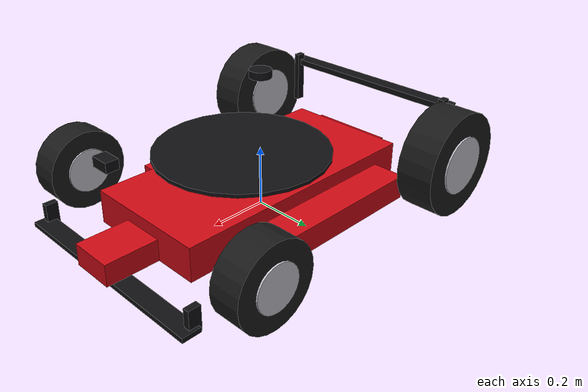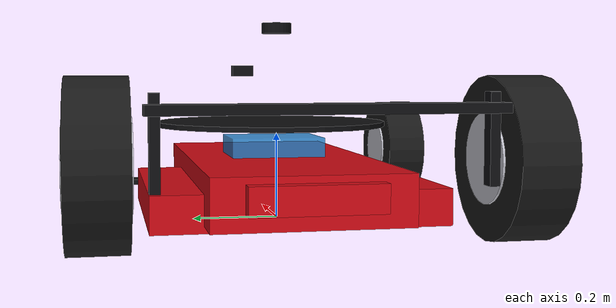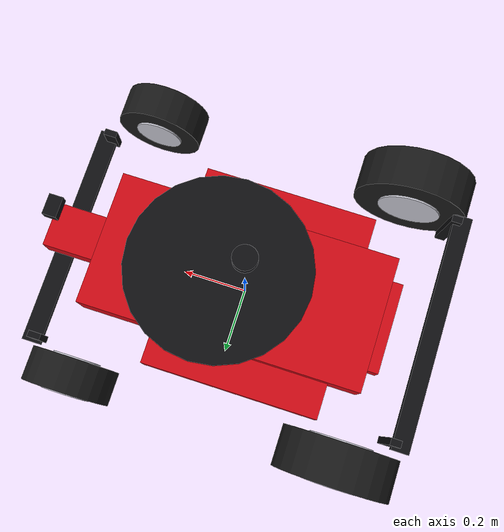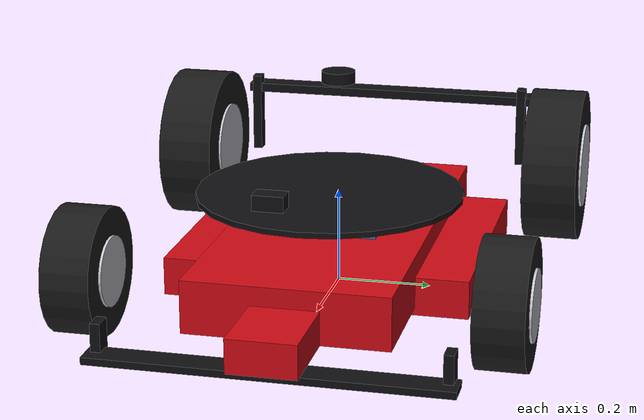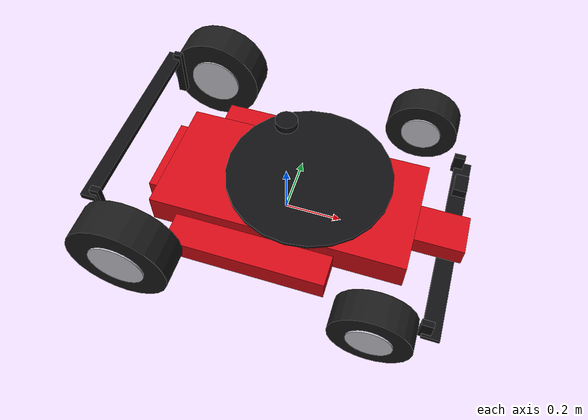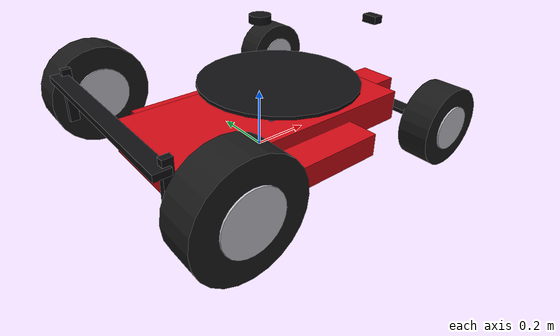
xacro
<?xml version="1.0"?>
<robot xmlns:xacro="http://www.ros.org/wiki/xacro" name="simple_car">
  <!-- F1 风格外观（RViz）；传感器坐标与 SDF 一致，base_link = FLU -->

  <material name="f1_red"><color rgba="0.82 0.04 0.08 1"/></material>
  <material name="carbon"><color rgba="0.06 0.06 0.07 1"/></material>
  <material name="rubber"><color rgba="0.10 0.10 0.10 1"/></material>
  <material name="rim"><color rgba="0.78 0.78 0.82 1"/></material>
  <material name="visor"><color rgba="0.15 0.55 0.85 0.85"/></material>

  <link name="base_link">
    <!-- 单体壳 -->
    <visual name="monocoque">
      <origin xyz="0.02 0 0.09" rpy="0 0 0"/>
      <geometry><box size="0.88 0.42 0.11"/></geometry>
      <material name="f1_red"/>
    </visual>
    <!-- 鼻锥 -->
    <visual name="nose">
      <origin xyz="0.52 0 0.07" rpy="0 0 0"/>
      <geometry><box size="0.22 0.14 0.07"/></geometry>
      <material name="f1_red"/>
    </visual>
    <!-- 侧箱 -->
    <visual name="sidepod_l">
      <origin xyz="-0.05 0.24 0.06" rpy="0 0 0"/>
      <geometry><box size="0.55 0.16 0.08"/></geometry>
      <material name="f1_red"/>
    </visual>
    <visual name="sidepod_r">
      <origin xyz="-0.05 -0.24 0.06" rpy="0 0 0"/>
      <geometry><box size="0.55 0.16 0.08"/></geometry>
      <material name="f1_red"/>
    </visual>
    <!-- 引擎盖 / 尾椎 -->
    <visual name="engine_cover">
      <origin xyz="-0.28 0 0.10" rpy="0 0 0"/>
      <geometry><box size="0.35 0.28 0.06"/></geometry>
      <material name="f1_red"/>
    </visual>
    <!-- 前翼主翼 -->
    <visual name="front_wing_main">
      <origin xyz="0.58 0 0.025" rpy="0 0 0"/>
      <geometry><box size="0.06 0.72 0.015"/></geometry>
      <material name="carbon"/>
    </visual>
    <!-- 前翼端板 -->
    <visual name="front_wing_ep_l">
      <origin xyz="0.56 0.34 0.05" rpy="0 0 0"/>
      <geometry><box size="0.04 0.02 0.08"/></geometry>
      <material name="carbon"/>
    </visual>
    <visual name="front_wing_ep_r">
      <origin xyz="0.56 -0.34 0.05" rpy="0 0 0"/>
      <geometry><box size="0.04 0.02 0.08"/></geometry>
      <material name="carbon"/>
    </visual>
    <!-- 后翼 -->
    <visual name="rear_wing_main">
      <origin xyz="-0.54 0 0.28" rpy="0 0 0"/>
      <geometry><box size="0.05 0.68 0.02"/></geometry>
      <material name="carbon"/>
    </visual>
    <visual name="rear_wing_ep_l">
      <origin xyz="-0.52 0.32 0.22" rpy="0 0 0"/>
      <geometry><box size="0.03 0.02 0.18"/></geometry>
      <material name="carbon"/>
    </visual>
    <visual name="rear_wing_ep_r">
      <origin xyz="-0.52 -0.32 0.22" rpy="0 0 0"/>
      <geometry><box size="0.03 0.02 0.18"/></geometry>
      <material name="carbon"/>
    </visual>
    <!-- Halo -->
    <visual name="halo">
      <origin xyz="0.08 0 0.22" rpy="0 0 0"/>
      <geometry><cylinder radius="0.28" length="0.012"/></geometry>
      <material name="carbon"/>
    </visual>
    <!-- 座舱罩 -->
    <visual name="cockpit">
      <origin xyz="0.05 0 0.16" rpy="0 0 0"/>
      <geometry><box size="0.18 0.22 0.06"/></geometry>
      <material name="visor"/>
    </visual>
  </link>

  <xacro:macro name="f1_wheel" params="prefix x y r length">
    <link name="${prefix}_wheel">
      <visual name="tire">
        <origin xyz="0 0 0" rpy="1.5708 0 0"/>
        <geometry><cylinder radius="${r}" length="${length}"/></geometry>
        <material name="rubber"/>
      </visual>
      <visual name="rim_disk">
        <origin xyz="0 0 0" rpy="1.5708 0 0"/>
        <geometry><cylinder radius="${r * 0.55}" length="${length + 0.01}"/></geometry>
        <material name="rim"/>
      </visual>
    </link>
    <joint name="${prefix}_wheel_joint" type="fixed">
      <parent link="base_link"/>
      <child link="${prefix}_wheel"/>
      <origin xyz="${x} ${y} ${r}" rpy="0 0 0"/>
    </joint>
  </xacro:macro>

  <xacro:f1_wheel prefix="front_left"  x="0.40"  y="0.42"  r="0.13" length="0.10"/>
  <xacro:f1_wheel prefix="front_right" x="0.40"  y="-0.42" r="0.13" length="0.10"/>
  <xacro:f1_wheel prefix="left_rear"   x="-0.40" y="0.42"  r="0.17" length="0.12"/>
  <xacro:f1_wheel prefix="right_rear"  x="-0.40" y="-0.42" r="0.17" length="0.12"/>

  <link name="camera_link">
    <visual name="camera_housing">
      <origin xyz="0 0 0" rpy="0 0 0"/>
      <geometry><box size="0.04 0.06 0.03"/></geometry>
      <material name="carbon"/>
    </visual>
  </link>
  <joint name="camera_joint" type="fixed">
    <parent link="base_link"/>
    <child link="camera_link"/>
    <origin xyz="0.55 0 0.35" rpy="0 0 0"/>
  </joint>

  <link name="camera_optical_frame"/>
  <joint name="camera_optical_joint" type="fixed">
    <parent link="camera_link"/>
    <child link="camera_optical_frame"/>
    <origin xyz="0 0 0" rpy="-1.5708 0 -1.5708"/>
  </joint>

  <link name="lidar_link">
    <visual name="lidar_pod">
      <origin xyz="0 0 0" rpy="0 0 0"/>
      <geometry><cylinder radius="0.035" length="0.025"/></geometry>
      <material name="carbon"/>
    </visual>
  </link>
  <joint name="lidar_joint" type="fixed">
    <parent link="base_link"/>
    <child link="lidar_link"/>
    <origin xyz="0 0 0.45" rpy="0 0 0"/>
  </joint>

  <link name="imu_link"/>
  <joint name="imu_joint" type="fixed">
    <parent link="base_link"/>
    <child link="imu_link"/>
    <origin xyz="0 0 0" rpy="0 0 0"/>
  </joint>

  <link name="gps_link"/>
  <joint name="gps_joint" type="fixed">
    <parent link="base_link"/>
    <child link="gps_link"/>
    <origin xyz="0 0 0.25" rpy="0 0 0"/>
  </joint>

  <link name="magnetometer_link"/>
  <joint name="magnetometer_joint" type="fixed">
    <parent link="base_link"/>
    <child link="magnetometer_link"/>
    <origin xyz="0 0 0.05" rpy="0 0 0"/>
  </joint>

</robot>
